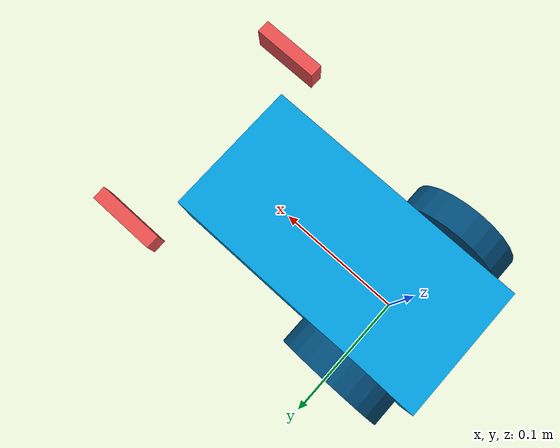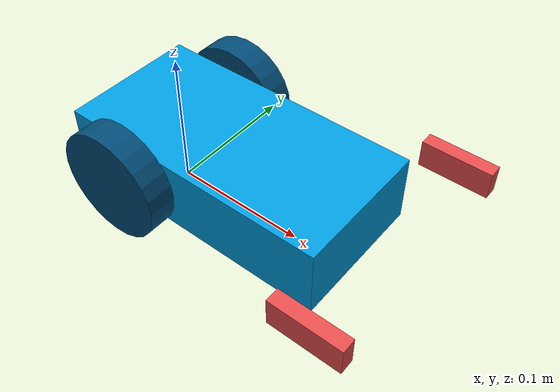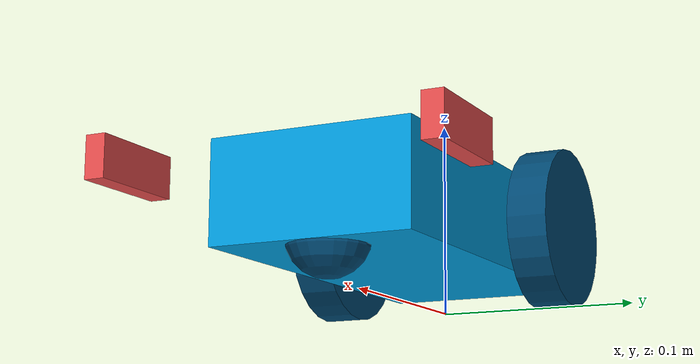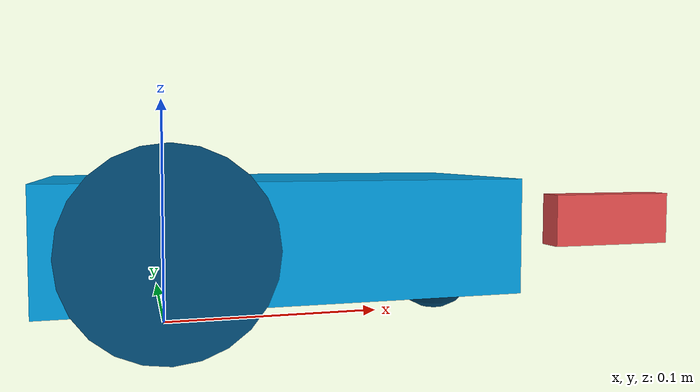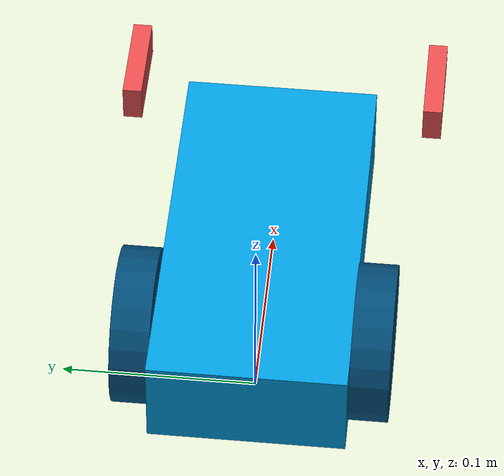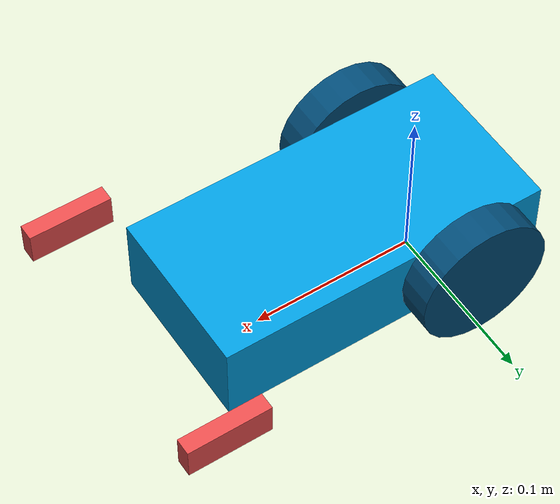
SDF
<?xml version="1.0" ?>
<sdf version="1.9">
  <model name="simple_robot" canonical_link='chassis'>
    <pose>0 0 0 0 0 0</pose>
		<link name='chassis'>
			<pose relative_to='__model__'>0.05 0 0.04 0 0 0</pose>
			  <inertial>
        <mass>1</mass>
        <inertia>
            <ixx>0.001191615</ixx>
            <ixy>0</ixy>
            <ixz>0</ixz>
            <iyy>0.004051490</iyy>
            <iyz>0</iyz>
            <izz>0.004766458</izz>
        </inertia>
    	</inertial>
			<visual name='visual'>
        <geometry>
            <box>
                <size>0.2 0.1 0.05</size>
            </box>
        </geometry>
        <material>
            <ambient>0.0 0.612 0.867 1</ambient>
            <diffuse>0.0 0.612 0.867 1</diffuse>
            <specular>0.0 0.612 0.867 1</specular>
        </material>
			</visual>
			<collision name='collision'>
            <geometry>
                <box>
                    <size>0.2 0.1 0.05</size>
                </box>
            </geometry>
        </collision>
		<sensor name="front_camera" type="camera">
			<pose relative_to="chassis">0.12 0 0.20 0 0.3 0</pose>
			<topic>front_camera</topic>
			<camera>
				<horizontal_fov>1.047</horizontal_fov>
				<image>
				<width>640</width>
				<height>480</height>
				<format>RGB_INT8</format>
				</image>
				<clip>
					<near>0.1</near>
					<far>100</far>
				</clip>
			</camera>
			<always_on>1</always_on>
			<update_rate>30</update_rate>
			<visualize>true</visualize>
		</sensor>
    	</link>
		<link name='left_wheel'>
			<pose relative_to="chassis">-0.05 0.06 0 -1.5707 0 0</pose>
			<inertial>
					<mass>0.2</mass>
					<inertia>
							<ixx>0.000800</ixx>
							<ixy>0</ixy>
							<ixz>0</ixz>
							<iyy>0.000433</iyy>
							<iyz>0</iyz>
							<izz>0.000433</izz>
					</inertia>
			</inertial>
			<visual name='visual'>
        <geometry>
            <cylinder>
                <radius>0.04</radius>
                <length>0.02</length>
            </cylinder>
        </geometry>
        <material>
            <ambient>0.0 0.29 0.46 1</ambient>
            <diffuse>0.0 0.29 0.46 1</diffuse>
            <specular>0.0 0.0 0.0 1</specular>
        </material>
			</visual>
			<collision name='collision'>
					<geometry>
							<cylinder>
									<radius>0.04</radius>
									<length>0.02</length>
							</cylinder>
					</geometry>
			</collision>
		</link>
		<link name='right_wheel'>
			<pose relative_to="chassis">-0.05 -0.06 0 -1.5707 0 0</pose>
			<inertial>
					<mass>0.2</mass>
					<inertia>
							<ixx>0.000800</ixx>
							<ixy>0</ixy>
							<ixz>0</ixz>
							<iyy>0.000433</iyy>
							<iyz>0</iyz>
							<izz>0.000433</izz>
					</inertia>
			</inertial>
			<visual name='visual'>
				<geometry>
						<cylinder>
								<radius>0.04</radius>
								<length>0.02</length>
						</cylinder>
				</geometry>
				<material>
						<ambient>0.0 0.29 0.46 1</ambient>
						<diffuse>0.0 0.29 0.46 1</diffuse>
						<specular>0.0 0.0 0.0 1</specular>
				</material>
				</visual>
				<collision name='collision'>
						<geometry>
								<cylinder>
										<radius>0.04</radius>
										<length>0.02</length>
								</cylinder>
						</geometry>
				</collision>
			</link>
			<frame name="caster_frame" attached_to='chassis'>
				<pose>0.08 0 -0.02 0 0 0</pose>
			</frame>
			<link name='caster'>
				<pose relative_to='caster_frame'/>
				<inertial>
						<mass>0.1</mass>
						<inertia>
								<ixx>0.00016</ixx>
								<ixy>0</ixy>
								<ixz>0</ixz>
								<iyy>0.00016</iyy>
								<iyz>0</iyz>
								<izz>0.00016</izz>
						</inertia>
				</inertial>
				<visual name='visual'>
						<geometry>
								<sphere>
										<radius>0.02</radius>
								</sphere>
						</geometry>
						<material>
								<ambient>0.0 0.29 0.46 1</ambient>
								<diffuse>0.0 0.29 0.46 1</diffuse>
								<specular>0.0 0.0 0.0 1</specular>
						</material>
				</visual>
				<collision name='collision'>
						<geometry>
								<sphere>
										<radius>0.02</radius>
								</sphere>
						</geometry>
				</collision>
		</link>
		<joint name='left_wheel_joint' type='revolute'>
			<pose relative_to='left_wheel'/>
			<parent>chassis</parent>
			<child>left_wheel</child>
			<axis>
					<xyz expressed_in='__model__'>0 1 0</xyz>
					<limit>
							<lower>-1.79769e+308</lower>    <!--negative infinity-->
							<upper> 1.79769e+308</upper>    <!--positive infinity-->
					</limit>
			</axis>
		</joint>
		<joint name='right_wheel_joint' type='revolute'>
			<pose relative_to='right_wheel'/>
			<parent>chassis</parent>
			<child>right_wheel</child>
			<axis>
					<xyz expressed_in='__model__'>0 1 0</xyz>
					<limit>
							<lower>-1.79769e+308</lower>    <!--negative infinity-->
							<upper> 1.79769e+308</upper>    <!--positive infinity-->
					</limit>
			</axis>
		</joint>
		<joint name='caster_wheel' type='ball'>
			<parent>chassis</parent>
			<child>caster</child>
		</joint>
		<plugin
			filename="libignition-gazebo-diff-drive-system.so"
			name="ignition::gazebo::systems::DiffDrive">
			<left_joint>left_wheel_joint</left_joint>
			<right_joint>right_wheel_joint</right_joint>
			<wheel_separation>0.12</wheel_separation>
			<wheel_radius>0.04</wheel_radius>
			<odom_publish_frequency>1</odom_publish_frequency>
			<topic>cmd_vel</topic>
		</plugin>

		<!-- pose publisher only for sim -->
		<plugin filename="gz-sim-pose-publisher-system"
          	name="gz::sim::systems::PosePublisher">
    		<publish_model_pose>true</publish_model_pose>
			<!-- gazebo has a bug for it, it needs a line bewlow to see only simple_robot-->
			<publish_nested_model_pose>true</publish_nested_model_pose>

			<publish_link_pose>false</publish_link_pose>
			<publish_visual_pose>false</publish_visual_pose>
			<publish_collision_pose>false</publish_collision_pose>
			<publish_sensor_pose>false</publish_sensor_pose>
    		<update_frequency>1</update_frequency>
  		</plugin>

<!-- gripper model and plugin-->
    <include>
      <uri>model://gripper</uri>
      <name>front_gripper</name>
      <pose>0.10 0 0.05 0 0 0</pose>
    </include>
    <joint name="front_gripper_fixed_joint" type="fixed">
      <parent>chassis</parent>
      <child>front_gripper::base_link</child>
    </joint>

	</model>
</sdf>

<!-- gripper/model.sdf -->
<sdf version="1.9">
  <model name="parallel_gripper" canonical_link="base_link">
    <pose>0 0 0 0 0 0</pose>

    <link name="base_link">
      <pose>0 0 0 0 0 0</pose>
      <inertial>
        <mass>0.2</mass>
        <inertia>
          <ixx>0.0000333</ixx>
          <iyy>0.0000667</iyy>
          <izz>0.0000867</izz>
          <ixy>0.0</ixy>
          <iyz>0.0</iyz>
          <ixz>0.0</ixz>
        </inertia>
      </inertial>
      <visual name="base_visual">
        <geometry>
          <box>
            <size>0.01 0.05 0.01</size>
          </box>
        </geometry>
        <material>
          <ambient>0.1 0.1 0.1 1</ambient>
          <diffuse>0.2 0.2 0.2 1</diffuse>
        </material>
      </visual>
    </link>

    <link name="finger_left">
      <pose>0.07 0.08 0 0 0 0</pose>
      <inertial>
        <mass>0.05</mass>
        <inertia>
          <ixx>0.0000021</ixx>
          <iyy>0.0000283</iyy>
          <izz>0.0000271</izz>
          <ixy>0.0</ixy>
          <iyz>0.0</iyz>
          <ixz>0.0</ixz>
        </inertia>
      </inertial>
      <visual name="finger_left_visual">
        <geometry>
          <box>
            <size>0.05 0.01 0.02</size>
          </box>
        </geometry>
        <material>
          <ambient>0.8 0.2 0.2 1</ambient>
          <diffuse>0.9 0.3 0.3 1</diffuse>
        </material>
      </visual>
      <collision name="finger_left_collision">
        <geometry>
          <box>
            <size>0.05 0.01 0.02</size>
          </box>
        </geometry>
      </collision>
    </link>

    <link name="finger_right">
      <pose>0.07 -0.08 0 0 0 0</pose>
      <inertial>
        <mass>0.05</mass>
        <inertia>
          <ixx>0.0000021</ixx>
          <iyy>0.0000283</iyy>
          <izz>0.0000271</izz>
          <ixy>0.0</ixy>
          <iyz>0.0</iyz>
          <ixz>0.0</ixz>
        </inertia>
      </inertial>
      <visual name="finger_right_visual">
        <geometry>
          <box>
            <size>0.05 0.01 0.02</size>
          </box>
        </geometry>
        <material>
          <ambient>0.8 0.2 0.2 1</ambient>
          <diffuse>0.9 0.3 0.3 1</diffuse>
        </material>
      </visual>
      <collision name="finger_right_collision">
        <geometry>
          <box>
            <size>0.05 0.01 0.02</size>
          </box>
        </geometry>
      </collision>
    </link>

    <joint name="finger_left_joint" type="prismatic">
      <parent>base_link</parent>
      <child>finger_left</child>
      <axis>
        <xyz>0 1 0</xyz>
        <limit>
          <lower>-0.1</lower>
          <upper>0.1</upper>
          <effort>50</effort>
          <velocity>0.2</velocity>
        </limit>
        <dynamics>
          <damping>5</damping>
          <friction>1</friction>
        </dynamics>
      </axis>
    </joint>

    <joint name="finger_right_joint" type="prismatic">
      <parent>base_link</parent>
      <child>finger_right</child>
      <axis>
        <xyz>0 -1 0</xyz>
        <limit>
          <lower>-0.1</lower>
          <upper>0.1</upper>
          <effort>50</effort>
          <velocity>0.2</velocity>
        </limit>
        <dynamics>
          <damping>5</damping>
          <friction>1</friction>
        </dynamics>
      </axis>
    </joint>

    <plugin
      filename="libignition-gazebo-joint-position-controller-system.so"
      name="ignition::gazebo::systems::JointPositionController">
      <joint_name>finger_left_joint</joint_name>
      <topic>/gripper/cmd_pos</topic>
      <p_gain>80</p_gain>
      <d_gain>2</d_gain>
    </plugin>

    <plugin
      filename="libignition-gazebo-joint-position-controller-system.so"
      name="ignition::gazebo::systems::JointPositionController">
      <joint_name>finger_right_joint</joint_name>
      <topic>/gripper/cmd_pos</topic>
      <p_gain>80</p_gain>
      <d_gain>2</d_gain>
    </plugin>
  </model>
</sdf>
